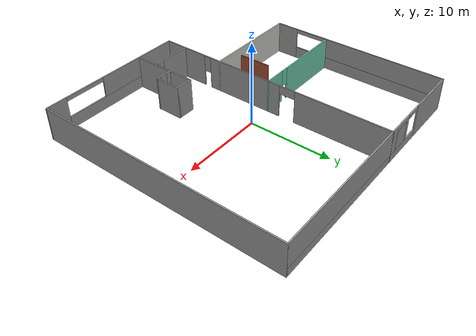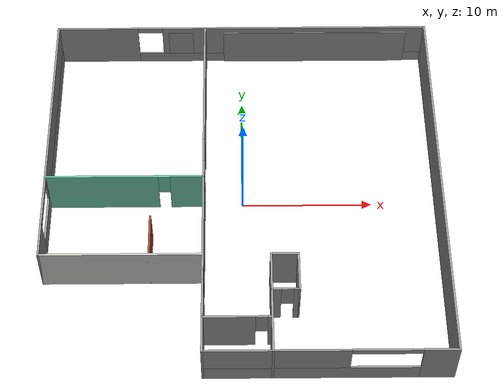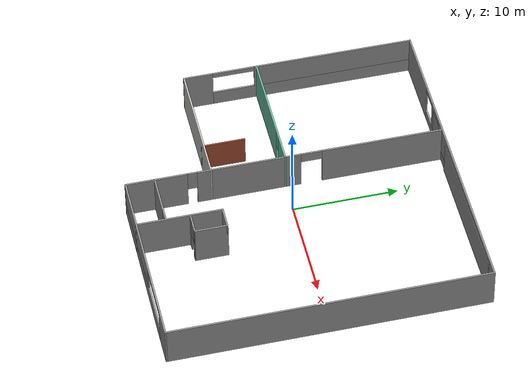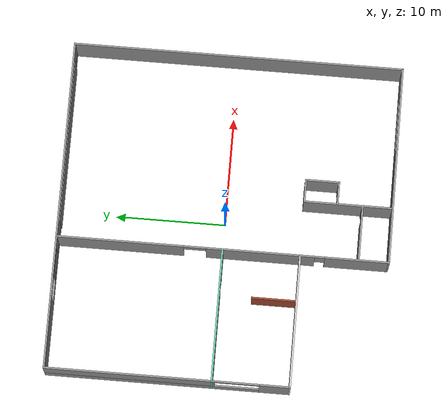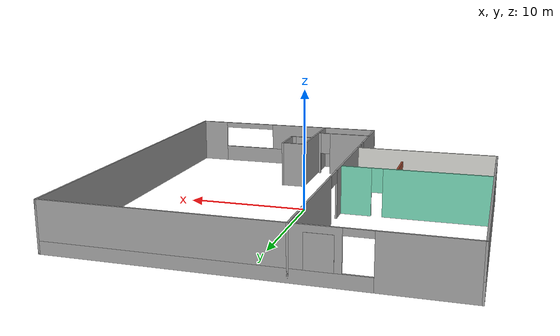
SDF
<?xml version='1.0'?>
<sdf version='1.6'>
  <model name='Lazy_Home'>
    <pose frame=''>0 0 0 0 -0 0</pose>
    <link name='Wall_0'>
      <pose frame=''>-15 4 0 0 -0 1.5708</pose>
      <visual name='Wall_0_Visual_0'>
        <pose frame=''>-9.66484 0 2 0 -0 0</pose>
        <geometry>
          <box>
            <size>2.82032 0.15 4</size>
          </box>
        </geometry>
        <material>
          <script>
            <uri>file://media/materials/scripts/gazebo.material</uri>
            <name>Gazebo/Grey</name>
          </script>
          <ambient>1 1 1 1</ambient>
        </material>
        <meta>
          <layer>0</layer>
        </meta>
      </visual>
      <collision name='Wall_0_Collision_0'>
        <geometry>
          <box>
            <size>2.82032 0.15 4</size>
          </box>
        </geometry>
        <pose frame=''>-9.66484 0 2 0 -0 0</pose>
      </collision>
      <visual name='Wall_0_Visual_1'>
        <pose frame=''>1.41016 0 0.75 0 -0 0</pose>
        <geometry>
          <box>
            <size>19.3297 0.15 1.5</size>
          </box>
        </geometry>
        <material>
          <script>
            <uri>file://media/materials/scripts/gazebo.material</uri>
            <name>Gazebo/Grey</name>
          </script>
          <ambient>1 1 1 1</ambient>
        </material>
        <meta>
          <layer>0</layer>
        </meta>
      </visual>
      <collision name='Wall_0_Collision_1'>
        <geometry>
          <box>
            <size>19.3297 0.15 1.5</size>
          </box>
        </geometry>
        <pose frame=''>1.41016 0 0.75 0 -0 0</pose>
      </collision>
      <visual name='Wall_0_Visual_2'>
        <pose frame=''>3.41016 0 2.75 0 -0 0</pose>
        <geometry>
          <box>
            <size>15.3297 0.15 2.5</size>
          </box>
        </geometry>
        <material>
          <script>
            <uri>file://media/materials/scripts/gazebo.material</uri>
            <name>Gazebo/Grey</name>
          </script>
          <ambient>1 1 1 1</ambient>
        </material>
        <meta>
          <layer>0</layer>
        </meta>
      </visual>
      <collision name='Wall_0_Collision_2'>
        <geometry>
          <box>
            <size>15.3297 0.15 2.5</size>
          </box>
        </geometry>
        <pose frame=''>3.41016 0 2.75 0 -0 0</pose>
      </collision>
      <visual name='Wall_0_Visual_3'>
        <pose frame=''>-6.25468 0 3.75 0 -0 0</pose>
        <geometry>
          <box>
            <size>4 0.15 0.5</size>
          </box>
        </geometry>
        <material>
          <script>
            <uri>file://media/materials/scripts/gazebo.material</uri>
            <name>Gazebo/Grey</name>
          </script>
          <ambient>1 1 1 1</ambient>
        </material>
        <meta>
          <layer>0</layer>
        </meta>
      </visual>
      <collision name='Wall_0_Collision_3'>
        <geometry>
          <box>
            <size>4 0.15 0.5</size>
          </box>
        </geometry>
        <pose frame=''>-6.25468 0 3.75 0 -0 0</pose>
      </collision>
    </link>
    <link name='Wall_1'>
      <pose frame=''>0 15 0 0 -0 0</pose>
      <visual name='Wall_1_Visual_0'>
        <pose frame=''>-11.7875 0 2 0 -0 0</pose>
        <geometry>
          <box>
            <size>6.575 0.15 4</size>
          </box>
        </geometry>
        <material>
          <script>
            <uri>file://media/materials/scripts/gazebo.material</uri>
            <name>Gazebo/Grey</name>
          </script>
          <ambient>1 1 1 1</ambient>
        </material>
        <meta>
          <layer>0</layer>
        </meta>
      </visual>
      <collision name='Wall_1_Collision_0'>
        <geometry>
          <box>
            <size>6.575 0.15 4</size>
          </box>
        </geometry>
        <pose frame=''>-11.7875 0 2 0 -0 0</pose>
      </collision>
      <visual name='Wall_1_Visual_1'>
        <pose frame=''>3.2875 0 0.5 0 -0 0</pose>
        <geometry>
          <box>
            <size>23.575 0.15 1</size>
          </box>
        </geometry>
        <material>
          <script>
            <uri>file://media/materials/scripts/gazebo.material</uri>
            <name>Gazebo/Grey</name>
          </script>
          <ambient>1 1 1 1</ambient>
        </material>
        <meta>
          <layer>0</layer>
        </meta>
      </visual>
      <collision name='Wall_1_Collision_1'>
        <geometry>
          <box>
            <size>23.575 0.15 1</size>
          </box>
        </geometry>
        <pose frame=''>3.2875 0 0.5 0 -0 0</pose>
      </collision>
      <visual name='Wall_1_Visual_2'>
        <pose frame=''>4.2875 0 2.5 0 -0 0</pose>
        <geometry>
          <box>
            <size>21.575 0.15 3</size>
          </box>
        </geometry>
        <material>
          <script>
            <uri>file://media/materials/scripts/gazebo.material</uri>
            <name>Gazebo/Grey</name>
          </script>
          <ambient>1 1 1 1</ambient>
        </material>
        <meta>
          <layer>0</layer>
        </meta>
      </visual>
      <collision name='Wall_1_Collision_2'>
        <geometry>
          <box>
            <size>21.575 0.15 3</size>
          </box>
        </geometry>
        <pose frame=''>4.2875 0 2.5 0 -0 0</pose>
      </collision>
      <visual name='Wall_1_Visual_3'>
        <pose frame=''>-7.5 0 3.75 0 -0 0</pose>
        <geometry>
          <box>
            <size>2 0.15 0.5</size>
          </box>
        </geometry>
        <material>
          <script>
            <uri>file://media/materials/scripts/gazebo.material</uri>
            <name>Gazebo/Grey</name>
          </script>
          <ambient>1 1 1 1</ambient>
        </material>
        <meta>
          <layer>0</layer>
        </meta>
      </visual>
      <collision name='Wall_1_Collision_3'>
        <geometry>
          <box>
            <size>2 0.15 0.5</size>
          </box>
        </geometry>
        <pose frame=''>-7.5 0 3.75 0 -0 0</pose>
      </collision>
    </link>
    <link name='Wall_12'>
      <pose frame=''>-9 0 0 0 -0 0</pose>
      <visual name='Wall_12_Visual_0'>
        <pose frame=''>-1.7625 0 2 0 -0 0</pose>
        <geometry>
          <box>
            <size>8.625 0.15 4</size>
          </box>
        </geometry>
        <material>
          <script>
            <uri>file://media/materials/scripts/gazebo.material</uri>
            <name>Gazebo/Grey</name>
          </script>
          <ambient>0.435294 0.796078 0.67451 1</ambient>
        </material>
        <meta>
          <layer>0</layer>
        </meta>
      </visual>
      <collision name='Wall_12_Collision_0'>
        <geometry>
          <box>
            <size>8.625 0.15 4</size>
          </box>
        </geometry>
        <pose frame=''>-1.7625 0 2 0 -0 0</pose>
      </collision>
      <visual name='Wall_12_Visual_1'>
        <pose frame=''>4.7625 0 2 0 -0 0</pose>
        <geometry>
          <box>
            <size>2.625 0.15 4</size>
          </box>
        </geometry>
        <material>
          <script>
            <uri>file://media/materials/scripts/gazebo.material</uri>
            <name>Gazebo/Grey</name>
          </script>
          <ambient>0.435294 0.796078 0.67451 1</ambient>
        </material>
        <meta>
          <layer>0</layer>
        </meta>
      </visual>
      <collision name='Wall_12_Collision_1'>
        <geometry>
          <box>
            <size>2.625 0.15 4</size>
          </box>
        </geometry>
        <pose frame=''>4.7625 0 2 0 -0 0</pose>
      </collision>
      <visual name='Wall_12_Visual_2'>
        <pose frame=''>3 0 3 0 -0 0</pose>
        <geometry>
          <box>
            <size>0.9 0.15 2</size>
          </box>
        </geometry>
        <material>
          <script>
            <uri>file://media/materials/scripts/gazebo.material</uri>
            <name>Gazebo/Grey</name>
          </script>
          <ambient>0.435294 0.796078 0.67451 1</ambient>
        </material>
        <meta>
          <layer>0</layer>
        </meta>
      </visual>
      <collision name='Wall_12_Collision_2'>
        <geometry>
          <box>
            <size>0.9 0.15 2</size>
          </box>
        </geometry>
        <pose frame=''>3 0 3 0 -0 0</pose>
      </collision>
    </link>
    <link name='Wall_14'>
      <collision name='Wall_14_Collision'>
        <geometry>
          <box>
            <size>8.15 0.15 4</size>
          </box>
        </geometry>
        <pose frame=''>0 0 2 0 -0 0</pose>
      </collision>
      <visual name='Wall_14_Visual'>
        <pose frame=''>0 0 2 0 -0 0</pose>
        <geometry>
          <box>
            <size>8.15 0.15 4</size>
          </box>
        </geometry>
        <material>
          <script>
            <uri>file://media/materials/scripts/gazebo.material</uri>
            <name>Gazebo/Grey</name>
          </script>
          <ambient>1 1 1 1</ambient>
        </material>
        <meta>
          <layer>0</layer>
        </meta>
      </visual>
      <pose frame=''>2 -11 0 0 -0 1.5708</pose>
    </link>
    <link name='Wall_15'>
      <collision name='Wall_15_Collision'>
        <geometry>
          <box>
            <size>2.15 0.15 4</size>
          </box>
        </geometry>
        <pose frame=''>0 0 2 0 -0 0</pose>
      </collision>
      <visual name='Wall_15_Visual'>
        <pose frame=''>0 0 2 0 -0 0</pose>
        <geometry>
          <box>
            <size>2.15 0.15 4</size>
          </box>
        </geometry>
        <material>
          <script>
            <uri>file://media/materials/scripts/gazebo.material</uri>
            <name>Gazebo/Grey</name>
          </script>
          <ambient>1 1 1 1</ambient>
        </material>
        <meta>
          <layer>0</layer>
        </meta>
      </visual>
      <pose frame=''>3 -7 0 0 -0 0</pose>
    </link>
    <link name='Wall_18'>
      <pose frame=''>-0.565 -12.272 0 0 -0 0</pose>
      <visual name='Wall_18_Visual_0'>
        <pose frame=''>-0.569721 0 2 0 -0 0</pose>
        <geometry>
          <box>
            <size>3.86056 0.15 4</size>
          </box>
        </geometry>
        <material>
          <script>
            <uri>file://media/materials/scripts/gazebo.material</uri>
            <name>Gazebo/Grey</name>
          </script>
          <ambient>1 1 1 1</ambient>
        </material>
        <meta>
          <layer>0</layer>
        </meta>
      </visual>
      <collision name='Wall_18_Collision_0'>
        <geometry>
          <box>
            <size>3.86056 0.15 4</size>
          </box>
        </geometry>
        <pose frame=''>-0.569721 0 2 0 -0 0</pose>
      </collision>
      <visual name='Wall_18_Visual_1'>
        <pose frame=''>2.38028 0 2 0 -0 0</pose>
        <geometry>
          <box>
            <size>0.239442 0.15 4</size>
          </box>
        </geometry>
        <material>
          <script>
            <uri>file://media/materials/scripts/gazebo.material</uri>
            <name>Gazebo/Grey</name>
          </script>
          <ambient>1 1 1 1</ambient>
        </material>
        <meta>
          <layer>0</layer>
        </meta>
      </visual>
      <collision name='Wall_18_Collision_1'>
        <geometry>
          <box>
            <size>0.239442 0.15 4</size>
          </box>
        </geometry>
        <pose frame=''>2.38028 0 2 0 -0 0</pose>
      </collision>
      <visual name='Wall_18_Visual_2'>
        <pose frame=''>1.81056 0 3 0 -0 0</pose>
        <geometry>
          <box>
            <size>0.9 0.15 2</size>
          </box>
        </geometry>
        <material>
          <script>
            <uri>file://media/materials/scripts/gazebo.material</uri>
            <name>Gazebo/Grey</name>
          </script>
          <ambient>1 1 1 1</ambient>
        </material>
        <meta>
          <layer>0</layer>
        </meta>
      </visual>
      <collision name='Wall_18_Collision_2'>
        <geometry>
          <box>
            <size>0.9 0.15 2</size>
          </box>
        </geometry>
        <pose frame=''>1.81056 0 3 0 -0 0</pose>
      </collision>
    </link>
    <link name='Wall_2'>
      <collision name='Wall_2_Collision'>
        <geometry>
          <box>
            <size>30.15 0.15 4</size>
          </box>
        </geometry>
        <pose frame=''>0 0 2 0 -0 0</pose>
      </collision>
      <visual name='Wall_2_Visual'>
        <pose frame=''>0 0 2 0 -0 0</pose>
        <geometry>
          <box>
            <size>30.15 0.15 4</size>
          </box>
        </geometry>
        <material>
          <script>
            <uri>file://media/materials/scripts/gazebo.material</uri>
            <name>Gazebo/Grey</name>
          </script>
          <ambient>1 1 1 1</ambient>
        </material>
        <meta>
          <layer>0</layer>
        </meta>
      </visual>
      <pose frame=''>15 0 0 0 0 -1.5708</pose>
    </link>
    <link name='Wall_22'>
      <collision name='Wall_22_Collision'>
        <geometry>
          <box>
            <size>4.15 0.15 3</size>
          </box>
        </geometry>
        <pose frame=''>0 0 1.5 0 -0 0</pose>
      </collision>
      <visual name='Wall_22_Visual'>
        <pose frame=''>0 0 1.5 0 -0 0</pose>
        <geometry>
          <box>
            <size>4.15 0.15 3</size>
          </box>
        </geometry>
        <material>
          <script>
            <uri>file://media/materials/scripts/gazebo.material</uri>
            <name>Gazebo/Bricks</name>
          </script>
          <ambient>1 1 1 1</ambient>
        </material>
        <meta>
          <layer>0</layer>
        </meta>
      </visual>
      <pose frame=''>-7 -5 0 0 -0 1.5708</pose>
    </link>
    <link name='Wall_24'>
      <collision name='Wall_24_Collision'>
        <geometry>
          <box>
            <size>3.15 0.15 4</size>
          </box>
        </geometry>
        <pose frame=''>0 0 2 0 -0 0</pose>
      </collision>
      <visual name='Wall_24_Visual'>
        <pose frame=''>0 0 2 0 -0 0</pose>
        <geometry>
          <box>
            <size>3.15 0.15 4</size>
          </box>
        </geometry>
        <material>
          <script>
            <uri>file://media/materials/scripts/gazebo.material</uri>
            <name>Gazebo/Grey</name>
          </script>
          <ambient>1 1 1 1</ambient>
        </material>
        <meta>
          <layer>0</layer>
        </meta>
      </visual>
      <pose frame=''>4 -8.5 0 0 0 -1.5708</pose>
    </link>
    <link name='Wall_25'>
      <pose frame=''>3 -10 0 0 -0 3.14159</pose>
      <visual name='Wall_25_Visual_0'>
        <pose frame=''>-0.828884 0 2 0 -0 0</pose>
        <geometry>
          <box>
            <size>0.492231 0.15 4</size>
          </box>
        </geometry>
        <material>
          <script>
            <uri>file://media/materials/scripts/gazebo.material</uri>
            <name>Gazebo/Grey</name>
          </script>
          <ambient>1 1 1 1</ambient>
        </material>
        <meta>
          <layer>0</layer>
        </meta>
      </visual>
      <collision name='Wall_25_Collision_0'>
        <geometry>
          <box>
            <size>0.492231 0.15 4</size>
          </box>
        </geometry>
        <pose frame=''>-0.828884 0 2 0 -0 0</pose>
      </collision>
      <visual name='Wall_25_Visual_1'>
        <pose frame=''>0.696116 0 2 0 -0 0</pose>
        <geometry>
          <box>
            <size>0.757769 0.15 4</size>
          </box>
        </geometry>
        <material>
          <script>
            <uri>file://media/materials/scripts/gazebo.material</uri>
            <name>Gazebo/Grey</name>
          </script>
          <ambient>1 1 1 1</ambient>
        </material>
        <meta>
          <layer>0</layer>
        </meta>
      </visual>
      <collision name='Wall_25_Collision_1'>
        <geometry>
          <box>
            <size>0.757769 0.15 4</size>
          </box>
        </geometry>
        <pose frame=''>0.696116 0 2 0 -0 0</pose>
      </collision>
      <visual name='Wall_25_Visual_2'>
        <pose frame=''>-0.132769 0 3 0 -0 0</pose>
        <geometry>
          <box>
            <size>0.9 0.15 2</size>
          </box>
        </geometry>
        <material>
          <script>
            <uri>file://media/materials/scripts/gazebo.material</uri>
            <name>Gazebo/Grey</name>
          </script>
          <ambient>1 1 1 1</ambient>
        </material>
        <meta>
          <layer>0</layer>
        </meta>
      </visual>
      <collision name='Wall_25_Collision_2'>
        <geometry>
          <box>
            <size>0.9 0.15 2</size>
          </box>
        </geometry>
        <pose frame=''>-0.132769 0 3 0 -0 0</pose>
      </collision>
    </link>
    <link name='Wall_3'>
      <pose frame=''>6 -15 0 0 -0 3.14159</pose>
      <visual name='Wall_3_Visual_0'>
        <pose frame=''>-7.7875 0 2 0 -0 0</pose>
        <geometry>
          <box>
            <size>2.575 0.15 4</size>
          </box>
        </geometry>
        <material>
          <script>
            <uri>file://media/materials/scripts/gazebo.material</uri>
            <name>Gazebo/Grey</name>
          </script>
          <ambient>1 1 1 1</ambient>
        </material>
        <meta>
          <layer>0</layer>
        </meta>
      </visual>
      <collision name='Wall_3_Collision_0'>
        <geometry>
          <box>
            <size>2.575 0.15 4</size>
          </box>
        </geometry>
        <pose frame=''>-7.7875 0 2 0 -0 0</pose>
      </collision>
      <visual name='Wall_3_Visual_1'>
        <pose frame=''>1.2875 0 0.75 0 -0 0</pose>
        <geometry>
          <box>
            <size>15.575 0.15 1.5</size>
          </box>
        </geometry>
        <material>
          <script>
            <uri>file://media/materials/scripts/gazebo.material</uri>
            <name>Gazebo/Grey</name>
          </script>
          <ambient>1 1 1 1</ambient>
        </material>
        <meta>
          <layer>0</layer>
        </meta>
      </visual>
      <collision name='Wall_3_Collision_1'>
        <geometry>
          <box>
            <size>15.575 0.15 1.5</size>
          </box>
        </geometry>
        <pose frame=''>1.2875 0 0.75 0 -0 0</pose>
      </collision>
      <visual name='Wall_3_Visual_2'>
        <pose frame=''>3.7875 0 2.75 0 -0 0</pose>
        <geometry>
          <box>
            <size>10.575 0.15 2.5</size>
          </box>
        </geometry>
        <material>
          <script>
            <uri>file://media/materials/scripts/gazebo.material</uri>
            <name>Gazebo/Grey</name>
          </script>
          <ambient>1 1 1 1</ambient>
        </material>
        <meta>
          <layer>0</layer>
        </meta>
      </visual>
      <collision name='Wall_3_Collision_2'>
        <geometry>
          <box>
            <size>10.575 0.15 2.5</size>
          </box>
        </geometry>
        <pose frame=''>3.7875 0 2.75 0 -0 0</pose>
      </collision>
      <visual name='Wall_3_Visual_3'>
        <pose frame=''>-4 0 3.75 0 -0 0</pose>
        <geometry>
          <box>
            <size>5 0.15 0.5</size>
          </box>
        </geometry>
        <material>
          <script>
            <uri>file://media/materials/scripts/gazebo.material</uri>
            <name>Gazebo/Grey</name>
          </script>
          <ambient>1 1 1 1</ambient>
        </material>
        <meta>
          <layer>0</layer>
        </meta>
      </visual>
      <collision name='Wall_3_Collision_3'>
        <geometry>
          <box>
            <size>5 0.15 0.5</size>
          </box>
        </geometry>
        <pose frame=''>-4 0 3.75 0 -0 0</pose>
      </collision>
    </link>
    <link name='Wall_4'>
      <pose frame=''>-3 -11 0 0 -0 1.5708</pose>
      <visual name='Wall_4_Visual_0'>
        <pose frame=''>-1.14794 0 2 0 -0 0</pose>
        <geometry>
          <box>
            <size>5.85411 0.15 4</size>
          </box>
        </geometry>
        <material>
          <script>
            <uri>file://media/materials/scripts/gazebo.material</uri>
            <name>Gazebo/Grey</name>
          </script>
          <ambient>1 1 1 1</ambient>
        </material>
        <meta>
          <layer>0</layer>
        </meta>
      </visual>
      <collision name='Wall_4_Collision_0'>
        <geometry>
          <box>
            <size>5.85411 0.15 4</size>
          </box>
        </geometry>
        <pose frame=''>-1.14794 0 2 0 -0 0</pose>
      </collision>
      <visual name='Wall_4_Visual_1'>
        <pose frame=''>3.37706 0 2 0 -0 0</pose>
        <geometry>
          <box>
            <size>1.39589 0.15 4</size>
          </box>
        </geometry>
        <material>
          <script>
            <uri>file://media/materials/scripts/gazebo.material</uri>
            <name>Gazebo/Grey</name>
          </script>
          <ambient>1 1 1 1</ambient>
        </material>
        <meta>
          <layer>0</layer>
        </meta>
      </visual>
      <collision name='Wall_4_Collision_1'>
        <geometry>
          <box>
            <size>1.39589 0.15 4</size>
          </box>
        </geometry>
        <pose frame=''>3.37706 0 2 0 -0 0</pose>
      </collision>
      <visual name='Wall_4_Visual_2'>
        <pose frame=''>2.22911 0 3 0 -0 0</pose>
        <geometry>
          <box>
            <size>0.9 0.15 2</size>
          </box>
        </geometry>
        <material>
          <script>
            <uri>file://media/materials/scripts/gazebo.material</uri>
            <name>Gazebo/Grey</name>
          </script>
          <ambient>1 1 1 1</ambient>
        </material>
        <meta>
          <layer>0</layer>
        </meta>
      </visual>
      <collision name='Wall_4_Collision_2'>
        <geometry>
          <box>
            <size>0.9 0.15 2</size>
          </box>
        </geometry>
        <pose frame=''>2.22911 0 3 0 -0 0</pose>
      </collision>
    </link>
    <link name='Wall_6'>
      <collision name='Wall_6_Collision'>
        <geometry>
          <box>
            <size>12.15 0.15 4</size>
          </box>
        </geometry>
        <pose frame=''>0 0 2 0 -0 0</pose>
      </collision>
      <visual name='Wall_6_Visual'>
        <pose frame=''>0 0 2 0 -0 0</pose>
        <geometry>
          <box>
            <size>12.15 0.15 4</size>
          </box>
        </geometry>
        <material>
          <script>
            <uri>file://media/materials/scripts/gazebo.material</uri>
            <name>Gazebo/CeilingTiled</name>
          </script>
          <ambient>1 1 1 1</ambient>
        </material>
        <meta>
          <layer>0</layer>
        </meta>
      </visual>
      <pose frame=''>-9 -7 0 0 -0 0</pose>
    </link>
    <link name='Wall_8'>
      <pose frame=''>-3 4 0 0 0 -1.5708</pose>
      <visual name='Wall_8_Visual_0'>
        <pose frame=''>-5.2875 0 2 0 -0 0</pose>
        <geometry>
          <box>
            <size>11.575 0.15 4</size>
          </box>
        </geometry>
        <material>
          <script>
            <uri>file://media/materials/scripts/gazebo.material</uri>
            <name>Gazebo/Grey</name>
          </script>
          <ambient>1 1 1 1</ambient>
        </material>
        <meta>
          <layer>0</layer>
        </meta>
      </visual>
      <collision name='Wall_8_Collision_0'>
        <geometry>
          <box>
            <size>11.575 0.15 4</size>
          </box>
        </geometry>
        <pose frame=''>-5.2875 0 2 0 -0 0</pose>
      </collision>
      <visual name='Wall_8_Visual_1'>
        <pose frame=''>6.7875 0 2 0 -0 0</pose>
        <geometry>
          <box>
            <size>8.575 0.15 4</size>
          </box>
        </geometry>
        <material>
          <script>
            <uri>file://media/materials/scripts/gazebo.material</uri>
            <name>Gazebo/Grey</name>
          </script>
          <ambient>1 1 1 1</ambient>
        </material>
        <meta>
          <layer>0</layer>
        </meta>
      </visual>
      <collision name='Wall_8_Collision_1'>
        <geometry>
          <box>
            <size>8.575 0.15 4</size>
          </box>
        </geometry>
        <pose frame=''>6.7875 0 2 0 -0 0</pose>
      </collision>
      <visual name='Wall_8_Visual_2'>
        <pose frame=''>1.5 0 3.5 0 -0 0</pose>
        <geometry>
          <box>
            <size>2 0.15 1</size>
          </box>
        </geometry>
        <material>
          <script>
            <uri>file://media/materials/scripts/gazebo.material</uri>
            <name>Gazebo/Grey</name>
          </script>
          <ambient>1 1 1 1</ambient>
        </material>
        <meta>
          <layer>0</layer>
        </meta>
      </visual>
      <collision name='Wall_8_Collision_2'>
        <geometry>
          <box>
            <size>2 0.15 1</size>
          </box>
        </geometry>
        <pose frame=''>1.5 0 3.5 0 -0 0</pose>
      </collision>
    </link>
    <link name='Window_3'>
      <collision name='Window_3_Collision'>
        <geometry>
          <box>
            <size>15 0.17 3.5</size>
          </box>
        </geometry>
        <pose frame=''>0 0 1.75 0 -0 0</pose>
      </collision>
      <visual name='Window_3_Visual'>
        <pose frame=''>0 0 1.75 0 -0 0</pose>
        <geometry>
          <box>
            <size>15 0.17 3.5</size>
          </box>
        </geometry>
        <material>
          <script>
            <uri>file://media/materials/scripts/gazebo.material</uri>
            <name>Gazebo/Grey</name>
          </script>
        </material>
      </visual>
      <pose frame=''>6.01405 14.9366 0 0 -0 0</pose>
    </link>
    <link name='Window_4'>
      <collision name='Window_4_Collision'>
        <geometry>
          <box>
            <size>2 0.17 2.5</size>
          </box>
        </geometry>
        <pose frame=''>0 0 1.25 0 -0 0</pose>
      </collision>
      <visual name='Window_4_Visual'>
        <pose frame=''>0 0 1.25 0 -0 0</pose>
        <geometry>
          <box>
            <size>2 0.17 2.5</size>
          </box>
        </geometry>
        <material>
          <script>
            <uri>file://media/materials/scripts/gazebo.material</uri>
            <name>Gazebo/Grey</name>
          </script>
        </material>
      </visual>
      <pose frame=''>-5 15 1 0 -0 0</pose>
    </link>
    <static>1</static>
  </model>
</sdf>
